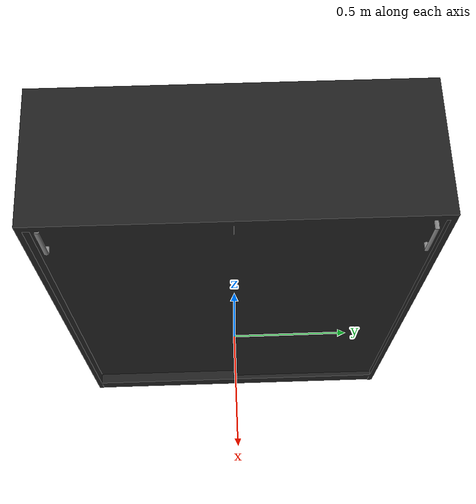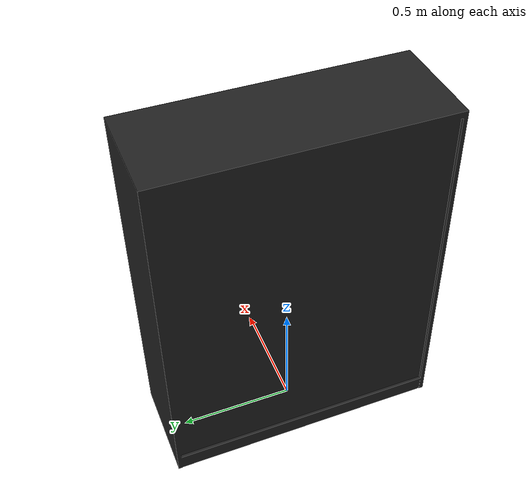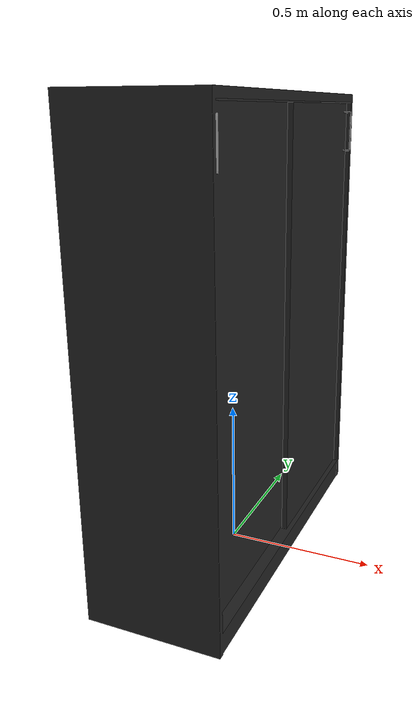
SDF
<?xml version="1.0" ?>
<sdf version="1.5">
  <model name="high_cabinet">
    <static>true</static>
    <link name="high_cabinet">
      <collision name="high_cabinet">
        <pose>0 0 0 0 0 0</pose>
        <geometry>
          <mesh>
            <uri>model://high_cabinet/meshes/model.dae</uri>
          </mesh>
        </geometry>
      </collision>

      <visual name="high_cabinet">
      <cast_shadows>true</cast_shadows>
        <geometry>
          <mesh>
          <uri>model://high_cabinet/meshes/model.dae</uri>
        </mesh>
        </geometry>
      </visual>
    </link>
  </model>
</sdf>
